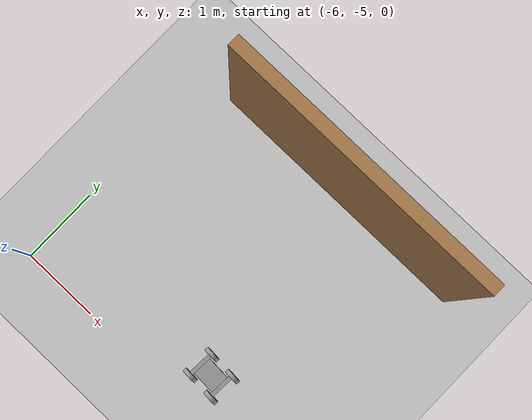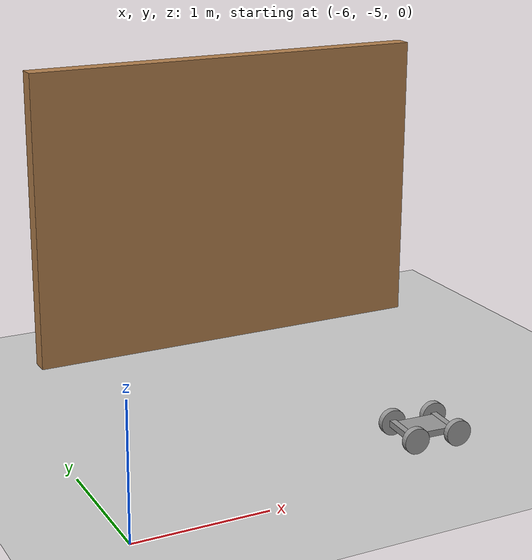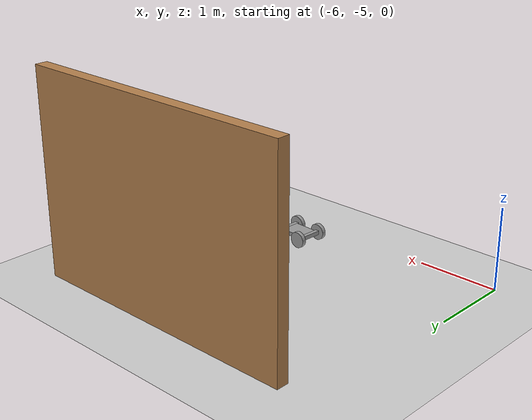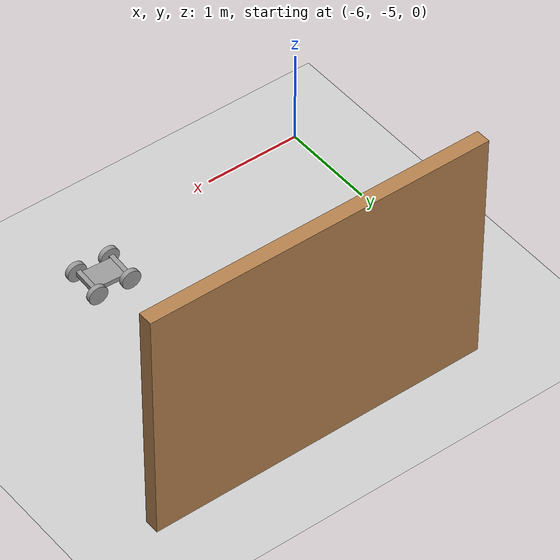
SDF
<sdf version="1.6">
 <world name="default">
  <model name="ground_plane">
   <static>1</static>
   <link name="link">
    <collision name="collision">
     <geometry><plane><normal>0 0 1</normal><size>100 100</size></plane></geometry>
     <surface>
      <contact><collide_bitmask>65535</collide_bitmask></contact>
      <friction><ode><mu>100</mu><mu2>50</mu2></ode></friction>
     </surface>
    </collision>
    <visual name="visual">
     <cast_shadows>0</cast_shadows>
     <geometry><plane><normal>0 0 1</normal><size>100 100</size></plane></geometry>
     <material>
      <script><uri>file://media/materials/scripts/gazebo.material</uri><name>Gazebo/Grey</name></script>
     </material>
    </visual>
   </link>
  </model>
  <model name="house">
   <link name="Wall_7">
    <pose>-3.95564 -1.94204 0 0 -0 0</pose>
    <inertial>
     <mass>1</mass>
     <inertia><ixx>1</ixx><ixy>0</ixy><ixz>0</ixz><iyy>1</iyy><iyz>0</iyz><izz>1</izz></inertia>
    </inertial>
    <visual name="Wall_7_Visual">
     <pose>0 0 1.25 0 -0 0</pose>
     <geometry><box><size>3.5 0.15 2.5</size></box></geometry>
     <material>
      <script><uri>file://media/materials/scripts/gazebo.material</uri><name>Gazebo/Wood</name></script>
      <ambient>1 1 1 1</ambient>
      <shader type="pixel"><normal_map>__default__</normal_map></shader>
     </material>
     <meta><layer>0</layer></meta>
    </visual>
    <collision name="Wall_7_Collision">
     <pose>0 0 1.25 0 -0 0</pose>
     <geometry><box><size>3.5 0.15 2.5</size></box></geometry>
     <surface>
      <friction>
       <ode><mu>1</mu><mu2>1</mu2><fdir1>0 0 0</fdir1><slip1>0</slip1><slip2>0</slip2></ode>
       <torsional>
        <coefficient>1</coefficient>
        <patch_radius>0</patch_radius>
        <surface_radius>0</surface_radius>
        <use_patch_radius>1</use_patch_radius>
        <ode><slip>0</slip></ode>
       </torsional>
      </friction>
      <bounce><restitution_coefficient>0</restitution_coefficient><threshold>1e+06</threshold></bounce>
      <contact>
       <collide_without_contact>0</collide_without_contact>
       <collide_without_contact_bitmask>1</collide_without_contact_bitmask>
       <collide_bitmask>1</collide_bitmask>
       <ode>
        <soft_cfm>0</soft_cfm>
        <soft_erp>0.2</soft_erp>
        <kp>1e+13</kp>
        <kd>1</kd>
        <max_vel>0.01</max_vel>
        <min_depth>0</min_depth>
       </ode>
       <bullet>
        <split_impulse>1</split_impulse>
        <split_impulse_penetration_threshold>-0.01</split_impulse_penetration_threshold>
        <soft_cfm>0</soft_cfm>
        <soft_erp>0.2</soft_erp>
        <kp>1e+13</kp>
        <kd>1</kd>
       </bullet>
      </contact>
     </surface>
    </collision>
   </link>
   <static>1</static>
   <pose>0.117199 0.016408 0 0 -0 0</pose>
  </model>
  <model name="four_wheel">
   <link name="link_0">
    <inertial>
     <mass>1</mass>
     <inertia>
      <ixx>0.166667</ixx>
      <ixy>0</ixy>
      <ixz>0</ixz>
      <iyy>0.166667</iyy>
      <iyz>0</iyz>
      <izz>0.166667</izz>
     </inertia>
    </inertial>
    <pose>-0.13125 0.047427 0.1 0 -0 0</pose>
    <visual name="visual">
     <geometry><box><size>0.05 0.3 0.05</size></box></geometry>
     <material>
      <lighting>1</lighting>
      <script><uri>file://media/materials/scripts/gazebo.material</uri><name>Gazebo/Grey</name></script>
      <shader type="pixel"><normal_map>__default__</normal_map></shader>
      <ambient>0.3 0.3 0.3 1</ambient>
      <diffuse>0.7 0.7 0.7 1</diffuse>
      <specular>0.01 0.01 0.01 1</specular>
      <emissive>0 0 0 1</emissive>
     </material>
    </visual>
    <collision name="collision">
     <geometry><box><size>0.05 0.3 0.05</size></box></geometry>
     <surface>
      <friction>
       <ode><mu>1</mu><mu2>1</mu2><fdir1>0 0 0</fdir1><slip1>0</slip1><slip2>0</slip2></ode>
       <torsional>
        <coefficient>1</coefficient>
        <patch_radius>0</patch_radius>
        <surface_radius>0</surface_radius>
        <use_patch_radius>1</use_patch_radius>
        <ode><slip>0</slip></ode>
       </torsional>
      </friction>
      <bounce><restitution_coefficient>0</restitution_coefficient><threshold>1e+06</threshold></bounce>
      <contact>
       <collide_without_contact>0</collide_without_contact>
       <collide_without_contact_bitmask>1</collide_without_contact_bitmask>
       <collide_bitmask>1</collide_bitmask>
       <ode>
        <soft_cfm>0</soft_cfm>
        <soft_erp>0.2</soft_erp>
        <kp>1e+13</kp>
        <kd>1</kd>
        <max_vel>0.01</max_vel>
        <min_depth>0</min_depth>
       </ode>
       <bullet>
        <split_impulse>1</split_impulse>
        <split_impulse_penetration_threshold>-0.01</split_impulse_penetration_threshold>
        <soft_cfm>0</soft_cfm>
        <soft_erp>0.2</soft_erp>
        <kp>1e+13</kp>
        <kd>1</kd>
       </bullet>
      </contact>
     </surface>
    </collision>
   </link>
   <link name="link_0_clone">
    <inertial>
     <mass>1</mass>
     <inertia>
      <ixx>0.166667</ixx>
      <ixy>0</ixy>
      <ixz>0</ixz>
      <iyy>0.166667</iyy>
      <iyz>0</iyz>
      <izz>0.166667</izz>
     </inertia>
    </inertial>
    <pose>0.21875 0.047427 0.1 0 -0 0</pose>
    <visual name="visual">
     <geometry><box><size>0.05 0.3 0.05</size></box></geometry>
     <material>
      <lighting>1</lighting>
      <script><uri>file://media/materials/scripts/gazebo.material</uri><name>Gazebo/Grey</name></script>
      <shader type="pixel"><normal_map>__default__</normal_map></shader>
      <ambient>0.3 0.3 0.3 1</ambient>
      <diffuse>0.7 0.7 0.7 1</diffuse>
      <specular>0.01 0.01 0.01 1</specular>
      <emissive>0 0 0 1</emissive>
     </material>
    </visual>
    <collision name="collision">
     <geometry><box><size>0.05 0.3 0.05</size></box></geometry>
     <surface>
      <friction>
       <ode><mu>1</mu><mu2>1</mu2><fdir1>0 0 0</fdir1><slip1>0</slip1><slip2>0</slip2></ode>
       <torsional>
        <coefficient>1</coefficient>
        <patch_radius>0</patch_radius>
        <surface_radius>0</surface_radius>
        <use_patch_radius>1</use_patch_radius>
        <ode><slip>0</slip></ode>
       </torsional>
      </friction>
      <bounce><restitution_coefficient>0</restitution_coefficient><threshold>1e+06</threshold></bounce>
      <contact>
       <collide_without_contact>0</collide_without_contact>
       <collide_without_contact_bitmask>1</collide_without_contact_bitmask>
       <collide_bitmask>1</collide_bitmask>
       <ode>
        <soft_cfm>0</soft_cfm>
        <soft_erp>0.2</soft_erp>
        <kp>1e+13</kp>
        <kd>1</kd>
        <max_vel>0.01</max_vel>
        <min_depth>0</min_depth>
       </ode>
       <bullet>
        <split_impulse>1</split_impulse>
        <split_impulse_penetration_threshold>-0.01</split_impulse_penetration_threshold>
        <soft_cfm>0</soft_cfm>
        <soft_erp>0.2</soft_erp>
        <kp>1e+13</kp>
        <kd>1</kd>
       </bullet>
      </contact>
     </surface>
    </collision>
   </link>
   <link name="link_0_clone_clone">
    <inertial>
     <mass>1</mass>
     <inertia>
      <ixx>0.166667</ixx>
      <ixy>0</ixy>
      <ixz>0</ixz>
      <iyy>0.166667</iyy>
      <iyz>0</iyz>
      <izz>0.166667</izz>
     </inertia>
    </inertial>
    <pose>0.04375 0.047427 0.1 0 -0 0</pose>
    <visual name="visual">
     <geometry><box><size>0.3 0.25 0.05</size></box></geometry>
     <material>
      <lighting>1</lighting>
      <script><uri>file://media/materials/scripts/gazebo.material</uri><name>Gazebo/Grey</name></script>
      <shader type="pixel"><normal_map>__default__</normal_map></shader>
      <ambient>0.3 0.3 0.3 1</ambient>
      <diffuse>0.7 0.7 0.7 1</diffuse>
      <specular>0.01 0.01 0.01 1</specular>
      <emissive>0 0 0 1</emissive>
     </material>
    </visual>
    <collision name="collision">
     <geometry><box><size>0.3 0.25 0.05</size></box></geometry>
     <surface>
      <friction>
       <ode><mu>1</mu><mu2>1</mu2><fdir1>0 0 0</fdir1><slip1>0</slip1><slip2>0</slip2></ode>
       <torsional>
        <coefficient>1</coefficient>
        <patch_radius>0</patch_radius>
        <surface_radius>0</surface_radius>
        <use_patch_radius>1</use_patch_radius>
        <ode><slip>0</slip></ode>
       </torsional>
      </friction>
      <bounce><restitution_coefficient>0</restitution_coefficient><threshold>1e+06</threshold></bounce>
      <contact>
       <collide_without_contact>0</collide_without_contact>
       <collide_without_contact_bitmask>1</collide_without_contact_bitmask>
       <collide_bitmask>1</collide_bitmask>
       <ode>
        <soft_cfm>0</soft_cfm>
        <soft_erp>0.2</soft_erp>
        <kp>1e+13</kp>
        <kd>1</kd>
        <max_vel>0.01</max_vel>
        <min_depth>0</min_depth>
       </ode>
       <bullet>
        <split_impulse>1</split_impulse>
        <split_impulse_penetration_threshold>-0.01</split_impulse_penetration_threshold>
        <soft_cfm>0</soft_cfm>
        <soft_erp>0.2</soft_erp>
        <kp>1e+13</kp>
        <kd>1</kd>
       </bullet>
      </contact>
     </surface>
    </collision>
   </link>
   <link name="link_1_clone">
    <inertial>
     <mass>1</mass>
     <inertia><ixx>0.145833</ixx><ixy>0</ixy><ixz>0</ixz><iyy>0.145833</iyy><iyz>0</iyz><izz>0.125</izz></inertia>
    </inertial>
    <pose>0.227825 -0.127583 0.100054 1.5707 -0 0</pose>
    <visual name="visual">
     <geometry><cylinder><radius>0.1</radius><length>0.05</length></cylinder></geometry>
     <material>
      <lighting>1</lighting>
      <script><uri>file://media/materials/scripts/gazebo.material</uri><name>Gazebo/Grey</name></script>
      <shader type="pixel"><normal_map>__default__</normal_map></shader>
      <ambient>0.3 0.3 0.3 1</ambient>
      <diffuse>0.7 0.7 0.7 1</diffuse>
      <specular>0.01 0.01 0.01 1</specular>
      <emissive>0 0 0 1</emissive>
     </material>
    </visual>
    <collision name="collision">
     <geometry><cylinder><radius>0.1</radius><length>0.05</length></cylinder></geometry>
     <surface>
      <friction>
       <ode><mu>1</mu><mu2>1</mu2><fdir1>0 0 0</fdir1><slip1>0</slip1><slip2>0</slip2></ode>
       <torsional>
        <coefficient>1</coefficient>
        <patch_radius>0</patch_radius>
        <surface_radius>0</surface_radius>
        <use_patch_radius>1</use_patch_radius>
        <ode><slip>0</slip></ode>
       </torsional>
      </friction>
      <bounce><restitution_coefficient>0</restitution_coefficient><threshold>1e+06</threshold></bounce>
      <contact>
       <collide_without_contact>0</collide_without_contact>
       <collide_without_contact_bitmask>1</collide_without_contact_bitmask>
       <collide_bitmask>1</collide_bitmask>
       <ode>
        <soft_cfm>0</soft_cfm>
        <soft_erp>0.2</soft_erp>
        <kp>1e+13</kp>
        <kd>1</kd>
        <max_vel>0.01</max_vel>
        <min_depth>0</min_depth>
       </ode>
       <bullet>
        <split_impulse>1</split_impulse>
        <split_impulse_penetration_threshold>-0.01</split_impulse_penetration_threshold>
        <soft_cfm>0</soft_cfm>
        <soft_erp>0.2</soft_erp>
        <kp>1e+13</kp>
        <kd>1</kd>
       </bullet>
      </contact>
     </surface>
    </collision>
   </link>
   <link name="link_1_clone_0">
    <inertial>
     <mass>1</mass>
     <inertia><ixx>0.145833</ixx><ixy>0</ixy><ixz>0</ixz><iyy>0.145833</iyy><iyz>0</iyz><izz>0.125</izz></inertia>
    </inertial>
    <pose>-0.122174 0.222437 0.100053 -1.5707 -0 -0</pose>
    <visual name="visual">
     <geometry><cylinder><radius>0.1</radius><length>0.05</length></cylinder></geometry>
     <material>
      <lighting>1</lighting>
      <script><uri>file://media/materials/scripts/gazebo.material</uri><name>Gazebo/Grey</name></script>
      <shader type="pixel"><normal_map>__default__</normal_map></shader>
      <ambient>0.3 0.3 0.3 1</ambient>
      <diffuse>0.7 0.7 0.7 1</diffuse>
      <specular>0.01 0.01 0.01 1</specular>
      <emissive>0 0 0 1</emissive>
     </material>
    </visual>
    <collision name="collision">
     <geometry><cylinder><radius>0.1</radius><length>0.05</length></cylinder></geometry>
     <surface>
      <friction>
       <ode><mu>1</mu><mu2>1</mu2><fdir1>0 0 0</fdir1><slip1>0</slip1><slip2>0</slip2></ode>
       <torsional>
        <coefficient>1</coefficient>
        <patch_radius>0</patch_radius>
        <surface_radius>0</surface_radius>
        <use_patch_radius>1</use_patch_radius>
        <ode><slip>0</slip></ode>
       </torsional>
      </friction>
      <bounce><restitution_coefficient>0</restitution_coefficient><threshold>1e+06</threshold></bounce>
      <contact>
       <collide_without_contact>0</collide_without_contact>
       <collide_without_contact_bitmask>1</collide_without_contact_bitmask>
       <collide_bitmask>1</collide_bitmask>
       <ode>
        <soft_cfm>0</soft_cfm>
        <soft_erp>0.2</soft_erp>
        <kp>1e+13</kp>
        <kd>1</kd>
        <max_vel>0.01</max_vel>
        <min_depth>0</min_depth>
       </ode>
       <bullet>
        <split_impulse>1</split_impulse>
        <split_impulse_penetration_threshold>-0.01</split_impulse_penetration_threshold>
        <soft_cfm>0</soft_cfm>
        <soft_erp>0.2</soft_erp>
        <kp>1e+13</kp>
        <kd>1</kd>
       </bullet>
      </contact>
     </surface>
    </collision>
   </link>
   <link name="link_1_clone_0_clone">
    <inertial>
     <mass>1</mass>
     <inertia><ixx>0.145833</ixx><ixy>0</ixy><ixz>0</ixz><iyy>0.145833</iyy><iyz>0</iyz><izz>0.125</izz></inertia>
    </inertial>
    <pose>0.227827 0.222437 0.100053 -1.5707 -0 -6e-06</pose>
    <visual name="visual">
     <geometry><cylinder><radius>0.1</radius><length>0.05</length></cylinder></geometry>
     <material>
      <lighting>1</lighting>
      <script><uri>file://media/materials/scripts/gazebo.material</uri><name>Gazebo/Grey</name></script>
      <shader type="pixel"><normal_map>__default__</normal_map></shader>
      <ambient>0.3 0.3 0.3 1</ambient>
      <diffuse>0.7 0.7 0.7 1</diffuse>
      <specular>0.01 0.01 0.01 1</specular>
      <emissive>0 0 0 1</emissive>
     </material>
    </visual>
    <collision name="collision">
     <geometry><cylinder><radius>0.1</radius><length>0.05</length></cylinder></geometry>
     <surface>
      <friction>
       <ode><mu>1</mu><mu2>1</mu2><fdir1>0 0 0</fdir1><slip1>0</slip1><slip2>0</slip2></ode>
       <torsional>
        <coefficient>1</coefficient>
        <patch_radius>0</patch_radius>
        <surface_radius>0</surface_radius>
        <use_patch_radius>1</use_patch_radius>
        <ode><slip>0</slip></ode>
       </torsional>
      </friction>
      <bounce><restitution_coefficient>0</restitution_coefficient><threshold>1e+06</threshold></bounce>
      <contact>
       <collide_without_contact>0</collide_without_contact>
       <collide_without_contact_bitmask>1</collide_without_contact_bitmask>
       <collide_bitmask>1</collide_bitmask>
       <ode>
        <soft_cfm>0</soft_cfm>
        <soft_erp>0.2</soft_erp>
        <kp>1e+13</kp>
        <kd>1</kd>
        <max_vel>0.01</max_vel>
        <min_depth>0</min_depth>
       </ode>
       <bullet>
        <split_impulse>1</split_impulse>
        <split_impulse_penetration_threshold>-0.01</split_impulse_penetration_threshold>
        <soft_cfm>0</soft_cfm>
        <soft_erp>0.2</soft_erp>
        <kp>1e+13</kp>
        <kd>1</kd>
       </bullet>
      </contact>
     </surface>
    </collision>
   </link>
   <link name="link_1_clone_clone">
    <inertial>
     <mass>1</mass>
     <inertia><ixx>0.145833</ixx><ixy>0</ixy><ixz>0</ixz><iyy>0.145833</iyy><iyz>0</iyz><izz>0.125</izz></inertia>
    </inertial>
    <pose>-0.122176 -0.127583 0.100055 1.5707 -0 -6e-06</pose>
    <visual name="visual">
     <geometry><cylinder><radius>0.1</radius><length>0.05</length></cylinder></geometry>
     <material>
      <lighting>1</lighting>
      <script><uri>file://media/materials/scripts/gazebo.material</uri><name>Gazebo/Grey</name></script>
      <shader type="pixel"><normal_map>__default__</normal_map></shader>
      <ambient>0.3 0.3 0.3 1</ambient>
      <diffuse>0.7 0.7 0.7 1</diffuse>
      <specular>0.01 0.01 0.01 1</specular>
      <emissive>0 0 0 1</emissive>
     </material>
    </visual>
    <collision name="collision">
     <geometry><cylinder><radius>0.1</radius><length>0.05</length></cylinder></geometry>
     <surface>
      <friction>
       <ode><mu>1</mu><mu2>1</mu2><fdir1>0 0 0</fdir1><slip1>0</slip1><slip2>0</slip2></ode>
       <torsional>
        <coefficient>1</coefficient>
        <patch_radius>0</patch_radius>
        <surface_radius>0</surface_radius>
        <use_patch_radius>1</use_patch_radius>
        <ode><slip>0</slip></ode>
       </torsional>
      </friction>
      <bounce><restitution_coefficient>0</restitution_coefficient><threshold>1e+06</threshold></bounce>
      <contact>
       <collide_without_contact>0</collide_without_contact>
       <collide_without_contact_bitmask>1</collide_without_contact_bitmask>
       <collide_bitmask>1</collide_bitmask>
       <ode>
        <soft_cfm>0</soft_cfm>
        <soft_erp>0.2</soft_erp>
        <kp>1e+13</kp>
        <kd>1</kd>
        <max_vel>0.01</max_vel>
        <min_depth>0</min_depth>
       </ode>
       <bullet>
        <split_impulse>1</split_impulse>
        <split_impulse_penetration_threshold>-0.01</split_impulse_penetration_threshold>
        <soft_cfm>0</soft_cfm>
        <soft_erp>0.2</soft_erp>
        <kp>1e+13</kp>
        <kd>1</kd>
       </bullet>
      </contact>
     </surface>
    </collision>
   </link>
   <joint name="link_0_JOINT_0_0" type="revolute">
    <parent>link_0</parent>
    <child>link_1_clone_0</child>
    <axis>
     <xyz>0 0 0.05</xyz>
     <limit>
      <lower>-1.79769e+308</lower>
      <upper>1.79769e+308</upper>
      <effort>-1</effort>
      <velocity>-1</velocity>
     </limit>
     <dynamics>
      <spring_reference>0</spring_reference>
      <spring_stiffness>0</spring_stiffness>
      <damping>0</damping>
     </dynamics>
     <use_parent_model_frame>0</use_parent_model_frame>
    </axis>
    <physics>
     <ode><limit><cfm>0</cfm><erp>0.2</erp></limit><suspension><cfm>0</cfm><erp>0.2</erp></suspension></ode>
    </physics>
   </joint>
   <joint name="link_0_JOINT_0" type="fixed">
    <parent>link_0</parent>
    <child>link_0_clone_clone</child>
    <physics>
     <ode><limit><cfm>0</cfm><erp>0.2</erp></limit><suspension><cfm>0</cfm><erp>0.2</erp></suspension></ode>
    </physics>
   </joint>
   <joint name="link_0_JOINT_1" type="revolute">
    <parent>link_0</parent>
    <child>link_1_clone_clone</child>
    <axis>
     <xyz>0 0 0.05</xyz>
     <limit>
      <lower>-1.79769e+308</lower>
      <upper>1.79769e+308</upper>
      <effort>-1</effort>
      <velocity>-1</velocity>
     </limit>
     <dynamics>
      <spring_reference>0</spring_reference>
      <spring_stiffness>0</spring_stiffness>
      <damping>0</damping>
     </dynamics>
     <use_parent_model_frame>0</use_parent_model_frame>
    </axis>
    <physics>
     <ode><limit><cfm>0</cfm><erp>0.2</erp></limit><suspension><cfm>0</cfm><erp>0.2</erp></suspension></ode>
    </physics>
   </joint>
   <joint name="link_0_clone_JOINT_1" type="fixed">
    <parent>link_0_clone</parent>
    <child>link_0_clone_clone</child>
    <physics>
     <ode><limit><cfm>0</cfm><erp>0.2</erp></limit><suspension><cfm>0</cfm><erp>0.2</erp></suspension></ode>
    </physics>
   </joint>
   <joint name="link_0_clone_JOINT_2" type="revolute">
    <parent>link_0_clone</parent>
    <child>link_1_clone_0_clone</child>
    <axis>
     <xyz>0 0 0.05</xyz>
     <limit>
      <lower>-1.79769e+308</lower>
      <upper>1.79769e+308</upper>
      <effort>-1</effort>
      <velocity>-1</velocity>
     </limit>
     <dynamics>
      <spring_reference>0</spring_reference>
      <spring_stiffness>0</spring_stiffness>
      <damping>0</damping>
     </dynamics>
     <use_parent_model_frame>0</use_parent_model_frame>
    </axis>
    <physics>
     <ode><limit><cfm>0</cfm><erp>0.2</erp></limit><suspension><cfm>0</cfm><erp>0.2</erp></suspension></ode>
    </physics>
   </joint>
   <joint name="link_0_clone_JOINT_3" type="revolute">
    <parent>link_0_clone</parent>
    <child>link_1_clone</child>
    <axis>
     <xyz>0 0 0.05</xyz>
     <limit>
      <lower>-1.79769e+308</lower>
      <upper>1.79769e+308</upper>
      <effort>-1</effort>
      <velocity>-1</velocity>
     </limit>
     <dynamics>
      <spring_reference>0</spring_reference>
      <spring_stiffness>0</spring_stiffness>
      <damping>0</damping>
     </dynamics>
     <use_parent_model_frame>0</use_parent_model_frame>
    </axis>
    <physics>
     <ode><limit><cfm>0</cfm><erp>0.2</erp></limit><suspension><cfm>0</cfm><erp>0.2</erp></suspension></ode>
    </physics>
   </joint>
   <static>0</static>
   <pose>-3.51937 -4.56976 -5.2e-05 4e-06 -2e-06 -0.050281</pose>
  </model>
 </world>
</sdf>
